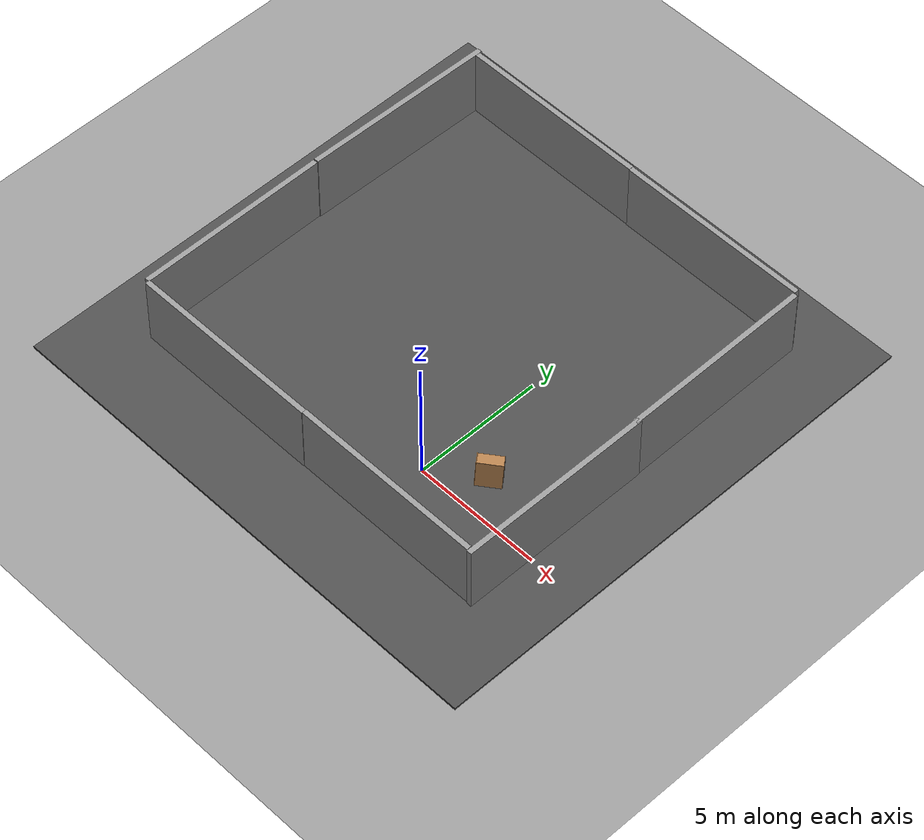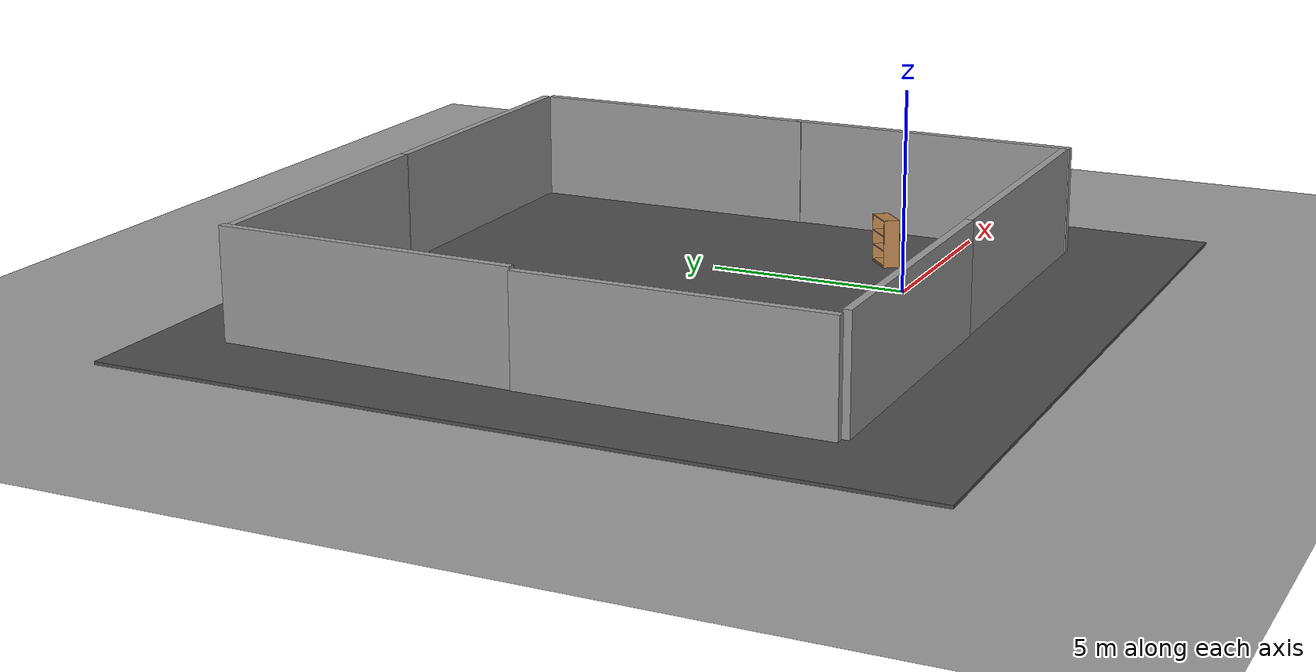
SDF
<sdf version="1.4">
 <world name="default">
  <light name="sun" type="directional">
   <pose>0 0 10 0 -0 0</pose>
   <diffuse>0.8 0.8 0.8 1</diffuse>
   <specular>0.2 0.2 0.2 1</specular>
   <attenuation>
    <range>1000</range>
    <constant>0.9</constant>
    <linear>0.01</linear>
    <quadratic>0.001</quadratic>
   </attenuation>
   <direction>-0.5 0.1 -0.9</direction>
  </light>
  <physics type="ode">
   <max_step_size>0.001</max_step_size>
   <real_time_factor>1</real_time_factor>
   <real_time_update_rate>1000</real_time_update_rate>
   <gravity>0 0 -9.8</gravity>
  </physics>
  <scene><ambient>0.4 0.4 0.4 1</ambient><background>0.7 0.7 0.7 1</background><shadows>1</shadows></scene>
  <spherical_coordinates>
   <surface_model>EARTH_WGS84</surface_model>
   <latitude_deg>0</latitude_deg>
   <longitude_deg>0</longitude_deg>
   <elevation>0</elevation>
   <heading_deg>0</heading_deg>
  </spherical_coordinates>
  <model name="grey_wall">
   <static>1</static>
   <link name="link">
    <pose>0 0 1.4 0 -0 0</pose>
    <collision name="collision"><geometry><box><size>7.5 0.2 2.8</size></box></geometry></collision>
    <visual name="visual">
     <cast_shadows>0</cast_shadows>
     <geometry><box><size>7.5 0.2 2.8</size></box></geometry>
     <material>
      <script>
       <uri>model://grey_wall/materials/scripts</uri>
       <uri>model://grey_wall/materials/textures</uri>
       <name>vrc/grey_wall</name>
      </script>
     </material>
    </visual>
    <velocity_decay><linear>0</linear><angular>0</angular></velocity_decay>
   </link>
   <pose>-6.47562 -2.53304 0 0 -0 0</pose>
  </model>
  <model name="grey_wall_0">
   <static>1</static>
   <link name="link">
    <pose>0 0 1.4 0 -0 0</pose>
    <collision name="collision"><geometry><box><size>7.5 0.2 2.8</size></box></geometry></collision>
    <visual name="visual">
     <cast_shadows>0</cast_shadows>
     <geometry><box><size>7.5 0.2 2.8</size></box></geometry>
     <material>
      <script>
       <uri>model://grey_wall/materials/scripts</uri>
       <uri>model://grey_wall/materials/textures</uri>
       <name>vrc/grey_wall</name>
      </script>
     </material>
    </visual>
    <velocity_decay><linear>0</linear><angular>0</angular></velocity_decay>
   </link>
   <pose>1.00618 -2.5152 0 0 -0 0</pose>
  </model>
  <model name="grey_wall_3">
   <static>1</static>
   <link name="link">
    <pose>0 0 1.4 0 -0 0</pose>
    <collision name="collision"><geometry><box><size>7.5 0.2 2.8</size></box></geometry></collision>
    <visual name="visual">
     <cast_shadows>0</cast_shadows>
     <geometry><box><size>7.5 0.2 2.8</size></box></geometry>
     <material>
      <script>
       <uri>model://grey_wall/materials/scripts</uri>
       <uri>model://grey_wall/materials/textures</uri>
       <name>vrc/grey_wall</name>
      </script>
     </material>
    </visual>
    <velocity_decay><linear>0</linear><angular>0</angular></velocity_decay>
   </link>
   <pose>-10.3539 1.29077 -0.0683 0 0 -1.56791</pose>
  </model>
  <model name="grey_wall_5">
   <static>1</static>
   <link name="link">
    <pose>0 0 1.4 0 -0 0</pose>
    <collision name="collision"><geometry><box><size>7.5 0.2 2.8</size></box></geometry></collision>
    <visual name="visual">
     <cast_shadows>0</cast_shadows>
     <geometry><box><size>7.5 0.2 2.8</size></box></geometry>
     <material>
      <script>
       <uri>model://grey_wall/materials/scripts</uri>
       <uri>model://grey_wall/materials/textures</uri>
       <name>vrc/grey_wall</name>
      </script>
     </material>
    </visual>
    <velocity_decay><linear>0</linear><angular>0</angular></velocity_decay>
   </link>
   <pose>-10.2616 8.76454 0 0 -0 1.55115</pose>
  </model>
  <model name="grey_wall_7">
   <static>1</static>
   <link name="link">
    <pose>0 0 1.4 0 -0 0</pose>
    <collision name="collision"><geometry><box><size>7.5 0.2 2.8</size></box></geometry></collision>
    <visual name="visual">
     <cast_shadows>0</cast_shadows>
     <geometry><box><size>7.5 0.2 2.8</size></box></geometry>
     <material>
      <script>
       <uri>model://grey_wall/materials/scripts</uri>
       <uri>model://grey_wall/materials/textures</uri>
       <name>vrc/grey_wall</name>
      </script>
     </material>
    </visual>
    <velocity_decay><linear>0</linear><angular>0</angular></velocity_decay>
   </link>
   <pose>4.88322 1.10484 0 0 -0 1.56864</pose>
  </model>
  <model name="grey_wall_8">
   <static>1</static>
   <link name="link">
    <pose>0 0 1.4 0 -0 0</pose>
    <collision name="collision"><geometry><box><size>7.5 0.2 2.8</size></box></geometry></collision>
    <visual name="visual">
     <cast_shadows>0</cast_shadows>
     <geometry><box><size>7.5 0.2 2.8</size></box></geometry>
     <material>
      <script>
       <uri>model://grey_wall/materials/scripts</uri>
       <uri>model://grey_wall/materials/textures</uri>
       <name>vrc/grey_wall</name>
      </script>
     </material>
    </visual>
    <velocity_decay><linear>0</linear><angular>0</angular></velocity_decay>
   </link>
   <pose>4.83469 8.44095 -0 0 -0 1.57821</pose>
  </model>
  <model name="grey_wall_9">
   <static>1</static>
   <link name="link">
    <pose>0 0 1.4 0 -0 0</pose>
    <collision name="collision"><geometry><box><size>7.5 0.2 2.8</size></box></geometry></collision>
    <visual name="visual">
     <cast_shadows>0</cast_shadows>
     <geometry><box><size>7.5 0.2 2.8</size></box></geometry>
     <material>
      <script>
       <uri>model://grey_wall/materials/scripts</uri>
       <uri>model://grey_wall/materials/textures</uri>
       <name>vrc/grey_wall</name>
      </script>
     </material>
    </visual>
    <velocity_decay><linear>0</linear><angular>0</angular></velocity_decay>
   </link>
   <pose>-6.51058 12.3307 0 0 -0 0</pose>
  </model>
  <model name="grey_wall_10">
   <static>1</static>
   <link name="link">
    <pose>0 0 1.4 0 -0 0</pose>
    <collision name="collision"><geometry><box><size>7.5 0.2 2.8</size></box></geometry></collision>
    <visual name="visual">
     <cast_shadows>0</cast_shadows>
     <geometry><box><size>7.5 0.2 2.8</size></box></geometry>
     <material>
      <script>
       <uri>model://grey_wall/materials/scripts</uri>
       <uri>model://grey_wall/materials/textures</uri>
       <name>vrc/grey_wall</name>
      </script>
     </material>
    </visual>
    <velocity_decay><linear>0</linear><angular>0</angular></velocity_decay>
   </link>
   <pose>1 12.3131 0 0 -0 0</pose>
  </model>
  <model name="ground_plane_0">
   <static>1</static>
   <link name="link">
    <collision name="collision">
     <geometry><plane><normal>0 0 1</normal><size>100 100</size></plane></geometry>
     <surface><friction><ode><mu>100</mu><mu2>50</mu2></ode></friction></surface>
    </collision>
    <visual name="visual">
     <cast_shadows>0</cast_shadows>
     <geometry><plane><normal>0 0 1</normal><size>100 100</size></plane></geometry>
     <material>
      <script><uri>file://media/materials/scripts/gazebo.material</uri><name>Gazebo/Grey</name></script>
     </material>
    </visual>
    <velocity_decay><linear>0</linear><angular>0</angular></velocity_decay>
   </link>
   <pose>3 -1.57054 0 0 -0 0</pose>
  </model>
  <model name="asphalt_plane">
   <static>1</static>
   <link name="link">
    <collision name="collision"><geometry><box><size>20 20 0.1</size></box></geometry></collision>
    <visual name="visual">
     <cast_shadows>0</cast_shadows>
     <geometry><box><size>20 20 0.1</size></box></geometry>
     <material>
      <script>
       <uri>model://asphalt_plane/materials/scripts</uri>
       <uri>model://asphalt_plane/materials/textures</uri>
       <name>vrc/asphalt</name>
      </script>
     </material>
    </visual>
    <velocity_decay><linear>0</linear><angular>0</angular></velocity_decay>
   </link>
   <pose>-2.62458 4.3373 0 0 -0 0</pose>
  </model>
  <model name="bookshelf">
   <static>1</static>
   <link name="link">
    <inertial><mass>1</mass></inertial>
    <collision name="back">
     <pose>0 0.005 0.6 0 -0 0</pose>
     <geometry><box><size>0.9 0.01 1.2</size></box></geometry>
    </collision>
    <visual name="visual1">
     <pose>0 0.005 0.6 0 -0 0</pose>
     <geometry><box><size>0.9 0.01 1.2</size></box></geometry>
     <material>
      <script><uri>file://media/materials/scripts/gazebo.material</uri><name>Gazebo/Wood</name></script>
     </material>
    </visual>
    <collision name="left_side">
     <pose>0.45 -0.195 0.6 0 -0 0</pose>
     <geometry><box><size>0.02 0.4 1.2</size></box></geometry>
    </collision>
    <visual name="visual2">
     <pose>0.45 -0.195 0.6 0 -0 0</pose>
     <geometry><box><size>0.02 0.4 1.2</size></box></geometry>
     <material>
      <script><uri>file://media/materials/scripts/gazebo.material</uri><name>Gazebo/Wood</name></script>
     </material>
    </visual>
    <collision name="right_side">
     <pose>-0.45 -0.195 0.6 0 -0 0</pose>
     <geometry><box><size>0.02 0.4 1.2</size></box></geometry>
    </collision>
    <visual name="visual3">
     <pose>-0.45 -0.195 0.6 0 -0 0</pose>
     <geometry><box><size>0.02 0.4 1.2</size></box></geometry>
     <material>
      <script><uri>file://media/materials/scripts/gazebo.material</uri><name>Gazebo/Wood</name></script>
     </material>
    </visual>
    <collision name="bottom">
     <pose>0 -0.195 0.03 0 -0 0</pose>
     <geometry><box><size>0.88 0.4 0.06</size></box></geometry>
    </collision>
    <visual name="visual4">
     <pose>0 -0.195 0.03 0 -0 0</pose>
     <geometry><box><size>0.88 0.4 0.06</size></box></geometry>
     <material>
      <script><uri>file://media/materials/scripts/gazebo.material</uri><name>Gazebo/Wood</name></script>
     </material>
    </visual>
    <collision name="top">
     <pose>0 -0.195 1.19 0 -0 0</pose>
     <geometry><box><size>0.88 0.4 0.02</size></box></geometry>
    </collision>
    <visual name="visual5">
     <pose>0 -0.195 1.19 0 -0 0</pose>
     <geometry><box><size>0.88 0.4 0.02</size></box></geometry>
     <material>
      <script><uri>file://media/materials/scripts/gazebo.material</uri><name>Gazebo/Wood</name></script>
     </material>
    </visual>
    <collision name="low_shelf">
     <pose>0 -0.195 0.43 0 -0 0</pose>
     <geometry><box><size>0.88 0.4 0.02</size></box></geometry>
    </collision>
    <visual name="visual6">
     <pose>0 -0.195 0.43 0 -0 0</pose>
     <geometry><box><size>0.88 0.4 0.02</size></box></geometry>
     <material>
      <script><uri>file://media/materials/scripts/gazebo.material</uri><name>Gazebo/Wood</name></script>
     </material>
    </visual>
    <collision name="high_shelf">
     <pose>0 -0.195 0.8 0 -0 0</pose>
     <geometry><box><size>0.88 0.4 0.02</size></box></geometry>
    </collision>
    <visual name="visual7">
     <pose>0 -0.195 0.8 0 -0 0</pose>
     <geometry><box><size>0.88 0.4 0.02</size></box></geometry>
     <material>
      <script><uri>file://media/materials/scripts/gazebo.material</uri><name>Gazebo/Wood</name></script>
     </material>
    </visual>
    <velocity_decay><linear>0</linear><angular>0</angular></velocity_decay>
   </link>
   <pose>2.0039 1.00233 0.086129 -0.007261 -0.052225 -2.46435</pose>
  </model>
 </world>
</sdf>
